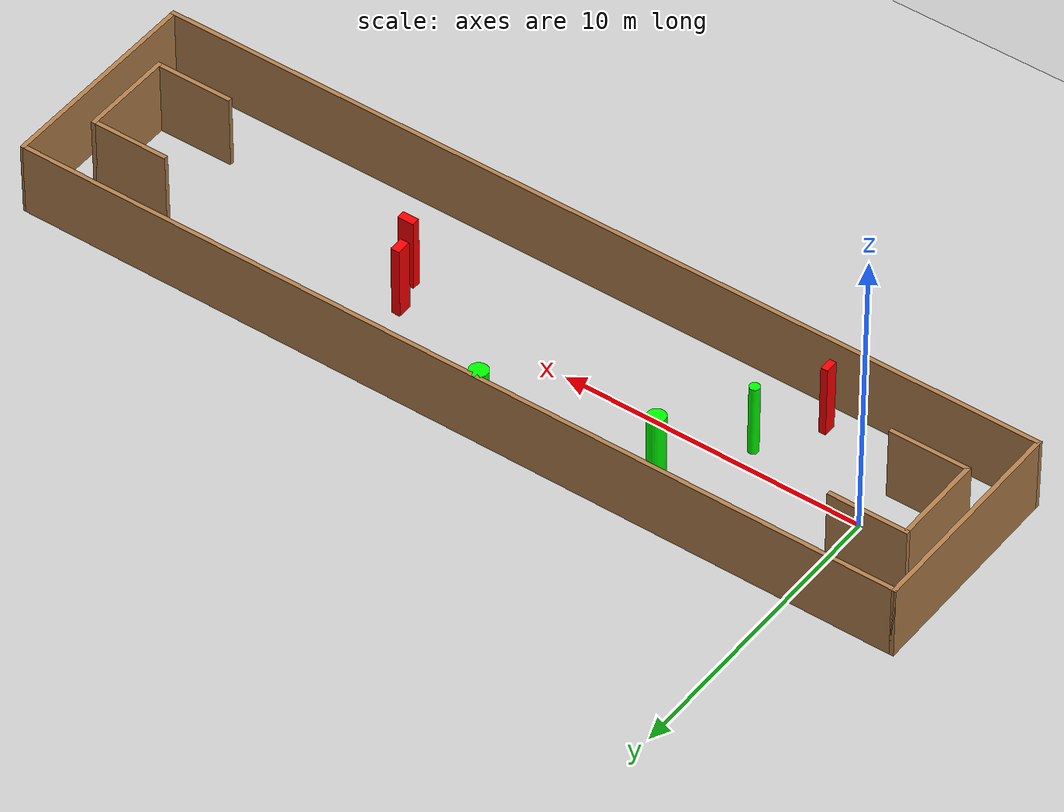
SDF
<sdf version="1.7">
 <world name="default">
  <light name="sun" type="directional">
   <pose>0 0 10 0 -0 0</pose>
   <diffuse>0.8 0.8 0.8 1</diffuse>
   <specular>0.2 0.2 0.2 1</specular>
   <attenuation>
    <range>1000</range>
    <constant>0.9</constant>
    <linear>0.01</linear>
    <quadratic>0.001</quadratic>
   </attenuation>
   <direction>-0.5 0.1 -0.9</direction>
   <spot><inner_angle>0</inner_angle><outer_angle>0</outer_angle><falloff>0</falloff></spot>
  </light>
  <model name="ground_plane">
   <static>1</static>
   <link name="link">
    <collision name="collision">
     <geometry><plane><normal>0 0 1</normal><size>100 100</size></plane></geometry>
     <surface>
      <contact><collide_bitmask>65535</collide_bitmask></contact>
      <friction><ode><mu>100</mu><mu2>50</mu2></ode></friction>
     </surface>
    </collision>
    <visual name="visual">
     <cast_shadows>0</cast_shadows>
     <geometry><plane><normal>0 0 1</normal><size>100 100</size></plane></geometry>
     <material>
      <script><uri>file://media/materials/scripts/gazebo.material</uri><name>Gazebo/Grey</name></script>
     </material>
    </visual>
   </link>
  </model>
  <gravity>0 0 -9.8</gravity>
  <magnetic_field>6e-06 2.3e-05 -4.2e-05</magnetic_field>
  <atmosphere type="adiabatic"/>
  <physics type="ode">
   <max_step_size>0.001</max_step_size>
   <real_time_factor>1</real_time_factor>
   <real_time_update_rate>1000</real_time_update_rate>
  </physics>
  <scene><ambient>0.4 0.4 0.4 1</ambient><background>0.7 0.7 0.7 1</background><shadows>1</shadows></scene>
  <spherical_coordinates>
   <surface_model>EARTH_WGS84</surface_model>
   <latitude_deg>0</latitude_deg>
   <longitude_deg>0</longitude_deg>
   <elevation>0</elevation>
   <heading_deg>0</heading_deg>
  </spherical_coordinates>
  <model name="my_base_walls">
   <link name="Wall_0">
    <collision name="Wall_0_Collision">
     <geometry><box><size>7.15 0.15 2.5</size></box></geometry>
     <pose>0 0 1.25 0 -0 0</pose>
    </collision>
    <visual name="Wall_0_Visual">
     <pose>0 0 1.25 0 -0 0</pose>
     <geometry><box><size>7.15 0.15 2.5</size></box></geometry>
     <material>
      <script><uri>file://media/materials/scripts/gazebo.material</uri><name>Gazebo/Wood</name></script>
      <ambient>1 1 1 1</ambient>
     </material>
     <meta><layer>0</layer></meta>
    </visual>
    <pose>-15 0 0 0 -0 1.5708</pose>
   </link>
   <link name="Wall_10">
    <collision name="Wall_10_Collision">
     <geometry><box><size>2.65 0.15 2.5</size></box></geometry>
     <pose>0 0 1.25 0 -0 0</pose>
    </collision>
    <visual name="Wall_10_Visual">
     <pose>0 0 1.25 0 -0 0</pose>
     <geometry><box><size>2.65 0.15 2.5</size></box></geometry>
     <material>
      <script><uri>file://media/materials/scripts/gazebo.material</uri><name>Gazebo/Wood</name></script>
      <ambient>1 1 1 1</ambient>
     </material>
     <meta><layer>0</layer></meta>
    </visual>
    <pose>-12.75 -1.5 0 0 -0 0</pose>
   </link>
   <link name="Wall_12">
    <collision name="Wall_12_Collision">
     <geometry><box><size>2.65 0.15 2.5</size></box></geometry>
     <pose>0 0 1.25 0 -0 0</pose>
    </collision>
    <visual name="Wall_12_Visual">
     <pose>0 0 1.25 0 -0 0</pose>
     <geometry><box><size>2.65 0.15 2.5</size></box></geometry>
     <material>
      <script><uri>file://media/materials/scripts/gazebo.material</uri><name>Gazebo/Wood</name></script>
      <ambient>1 1 1 1</ambient>
     </material>
     <meta><layer>0</layer></meta>
    </visual>
    <pose>-12.75 1.5 0 0 -0 0</pose>
   </link>
   <link name="Wall_14">
    <collision name="Wall_14_Collision">
     <geometry><box><size>3.15 0.15 2.5</size></box></geometry>
     <pose>0 0 1.25 0 -0 0</pose>
    </collision>
    <visual name="Wall_14_Visual">
     <pose>0 0 1.25 0 -0 0</pose>
     <geometry><box><size>3.15 0.15 2.5</size></box></geometry>
     <material>
      <script><uri>file://media/materials/scripts/gazebo.material</uri><name>Gazebo/Wood</name></script>
      <ambient>1 1 1 1</ambient>
     </material>
     <meta><layer>0</layer></meta>
    </visual>
    <pose>14 0 0 0 -0 -1.5708</pose>
   </link>
   <link name="Wall_15">
    <collision name="Wall_15_Collision">
     <geometry><box><size>2.65 0.15 2.5</size></box></geometry>
     <pose>0 0 1.25 0 -0 0</pose>
    </collision>
    <visual name="Wall_15_Visual">
     <pose>0 0 1.25 0 -0 0</pose>
     <geometry><box><size>2.65 0.15 2.5</size></box></geometry>
     <material>
      <script><uri>file://media/materials/scripts/gazebo.material</uri><name>Gazebo/Wood</name></script>
      <ambient>1 1 1 1</ambient>
     </material>
     <meta><layer>0</layer></meta>
    </visual>
    <pose>12.75 -1.5 0 0 -0 3.14159</pose>
   </link>
   <link name="Wall_17">
    <collision name="Wall_17_Collision">
     <geometry><box><size>2.65 0.15 2.5</size></box></geometry>
     <pose>0 0 1.25 0 -0 0</pose>
    </collision>
    <visual name="Wall_17_Visual">
     <pose>0 0 1.25 0 -0 0</pose>
     <geometry><box><size>2.65 0.15 2.5</size></box></geometry>
     <material>
      <script><uri>file://media/materials/scripts/gazebo.material</uri><name>Gazebo/Wood</name></script>
      <ambient>1 1 1 1</ambient>
     </material>
     <meta><layer>0</layer></meta>
    </visual>
    <pose>12.75 1.5 0 0 -0 3.14159</pose>
   </link>
   <link name="Wall_2">
    <collision name="Wall_2_Collision">
     <geometry><box><size>30.15 0.15 2.5</size></box></geometry>
     <pose>0 0 1.25 0 -0 0</pose>
    </collision>
    <visual name="Wall_2_Visual">
     <pose>0 0 1.25 0 -0 0</pose>
     <geometry><box><size>30.15 0.15 2.5</size></box></geometry>
     <material>
      <script><uri>file://media/materials/scripts/gazebo.material</uri><name>Gazebo/Wood</name></script>
      <ambient>1 1 1 1</ambient>
     </material>
     <meta><layer>0</layer></meta>
    </visual>
    <pose>-0 -3.5 0 0 -0 0</pose>
   </link>
   <link name="Wall_4">
    <collision name="Wall_4_Collision">
     <geometry><box><size>30.15 0.15 2.5</size></box></geometry>
     <pose>0 0 1.25 0 -0 0</pose>
    </collision>
    <visual name="Wall_4_Visual">
     <pose>0 0 1.25 0 -0 0</pose>
     <geometry><box><size>30.15 0.15 2.5</size></box></geometry>
     <material>
      <script><uri>file://media/materials/scripts/gazebo.material</uri><name>Gazebo/Wood</name></script>
      <ambient>1 1 1 1</ambient>
     </material>
     <meta><layer>0</layer></meta>
    </visual>
    <pose>-0 3.5 0 0 -0 0</pose>
   </link>
   <link name="Wall_6">
    <collision name="Wall_6_Collision">
     <geometry><box><size>7.15 0.15 2.5</size></box></geometry>
     <pose>0 0 1.25 0 -0 0</pose>
    </collision>
    <visual name="Wall_6_Visual">
     <pose>0 0 1.25 0 -0 0</pose>
     <geometry><box><size>7.15 0.15 2.5</size></box></geometry>
     <material>
      <script><uri>file://media/materials/scripts/gazebo.material</uri><name>Gazebo/Wood</name></script>
      <ambient>1 1 1 1</ambient>
     </material>
     <meta><layer>0</layer></meta>
    </visual>
    <pose>15 0 0 0 -0 -1.5708</pose>
   </link>
   <link name="Wall_9">
    <collision name="Wall_9_Collision">
     <geometry><box><size>3.15 0.15 2.5</size></box></geometry>
     <pose>0 0 1.25 0 -0 0</pose>
    </collision>
    <visual name="Wall_9_Visual">
     <pose>0 0 1.25 0 -0 0</pose>
     <geometry><box><size>3.15 0.15 2.5</size></box></geometry>
     <material>
      <script><uri>file://media/materials/scripts/gazebo.material</uri><name>Gazebo/Wood</name></script>
      <ambient>1 1 1 1</ambient>
     </material>
     <meta><layer>0</layer></meta>
    </visual>
    <pose>-14 0 0 0 -0 -1.5708</pose>
   </link>
   <static>1</static>
   <pose>11.5 0 0 0 -0 0</pose>
  </model>
  <model name="cylinder1">
   <static>1</static>
   <link name="link">
    <inertial>
     <mass>1</mass>
     <inertia><ixx>0.5</ixx><ixy>0</ixy><ixz>0</ixz><iyy>0.5</iyy><iyz>0</iyz><izz>1</izz></inertia>
    </inertial>
    <collision name="collision">
     <geometry><cylinder><radius>0.2916828970190891</radius><length>2.5</length></cylinder></geometry>
    </collision>
    <visual name="visual">
     <geometry><cylinder><radius>0.2916828970190891</radius><length>2.5</length></cylinder></geometry>
     <material>
      <ambient>0 1 0 1</ambient>
      <diffuse>0 1 0 1</diffuse>
      <specular>0.1 0.1 0.1 1</specular>
      <emissive>0 0 0 0</emissive>
     </material>
    </visual>
   </link>
   <pose>5.594112240134292 1.8240644080171142 1.25 0 0 0</pose>
  </model>
  <model name="cylinder2">
   <static>1</static>
   <link name="link">
    <inertial>
     <mass>1</mass>
     <inertia><ixx>0.5</ixx><ixy>0</ixy><ixz>0</ixz><iyy>0.5</iyy><iyz>0</iyz><izz>1</izz></inertia>
    </inertial>
    <collision name="collision">
     <geometry><cylinder><radius>0.30276237788298255</radius><length>2.5</length></cylinder></geometry>
    </collision>
    <visual name="visual">
     <geometry><cylinder><radius>0.30276237788298255</radius><length>2.5</length></cylinder></geometry>
     <material>
      <ambient>0 1 0 1</ambient>
      <diffuse>0 1 0 1</diffuse>
      <specular>0.1 0.1 0.1 1</specular>
      <emissive>0 0 0 0</emissive>
     </material>
    </visual>
   </link>
   <pose>10.633439946507401 3.251361896957981 1.25 0 0 0</pose>
  </model>
  <model name="cylinder3">
   <static>1</static>
   <link name="link">
    <inertial>
     <mass>1</mass>
     <inertia><ixx>0.5</ixx><ixy>0</ixy><ixz>0</ixz><iyy>0.5</iyy><iyz>0</iyz><izz>1</izz></inertia>
    </inertial>
    <collision name="collision">
     <geometry><cylinder><radius>0.168161950983842</radius><length>2.5</length></cylinder></geometry>
    </collision>
    <visual name="visual">
     <geometry><cylinder><radius>0.168161950983842</radius><length>2.5</length></cylinder></geometry>
     <material>
      <ambient>0 1 0 1</ambient>
      <diffuse>0 1 0 1</diffuse>
      <specular>0.1 0.1 0.1 1</specular>
      <emissive>0 0 0 0</emissive>
     </material>
    </visual>
   </link>
   <pose>4.0680825053689205 -0.7113979963357928 1.25 0 0 0</pose>
  </model>
  <model name="box1">
   <static>1</static>
   <link name="link">
    <inertial>
     <mass>1</mass>
     <inertia><ixx>0.083</ixx><ixy>0</ixy><ixz>0</ixz><iyy>0.083</iyy><iyz>0</iyz><izz>0.083</izz></inertia>
    </inertial>
    <collision name="collision">
     <geometry><box><size>0.29442985388163384 0.48398401974893035 2.5</size></box></geometry>
    </collision>
    <visual name="visual">
     <geometry><box><size>0.29442985388163384 0.48398401974893035 2.5</size></box></geometry>
     <material>
      <ambient>1 0 0 1</ambient>
      <diffuse>1 0 0 1</diffuse>
      <specular>0.1 0.1 0.1 1</specular>
      <emissive>0 0 0 0</emissive>
     </material>
    </visual>
    <sensor name="my_contact" type="contact">
     <contact><collision>box_collision</collision><topic>__default_topic__</topic></contact>
    </sensor>
   </link>
   <pose>15.379535401465017 0.5153498113270851 1.25 0 0 0</pose>
  </model>
  <model name="box2">
   <static>1</static>
   <link name="link">
    <inertial>
     <mass>1</mass>
     <inertia><ixx>0.083</ixx><ixy>0</ixy><ixz>0</ixz><iyy>0.083</iyy><iyz>0</iyz><izz>0.083</izz></inertia>
    </inertial>
    <collision name="collision">
     <geometry><box><size>0.5418259757767977 0.28287692671774894 2.5</size></box></geometry>
    </collision>
    <visual name="visual">
     <geometry><box><size>0.5418259757767977 0.28287692671774894 2.5</size></box></geometry>
     <material>
      <ambient>1 0 0 1</ambient>
      <diffuse>1 0 0 1</diffuse>
      <specular>0.1 0.1 0.1 1</specular>
      <emissive>0 0 0 0</emissive>
     </material>
    </visual>
    <sensor name="my_contact" type="contact">
     <contact><collision>box_collision</collision><topic>__default_topic__</topic></contact>
    </sensor>
   </link>
   <pose>15.864247976624338 -0.527528000063664 1.25 0 0 0</pose>
  </model>
  <model name="box3">
   <static>1</static>
   <link name="link">
    <inertial>
     <mass>1</mass>
     <inertia><ixx>0.083</ixx><ixy>0</ixy><ixz>0</ixz><iyy>0.083</iyy><iyz>0</iyz><izz>0.083</izz></inertia>
    </inertial>
    <collision name="collision">
     <geometry><box><size>0.23428041513306233 0.43089482700004356 2.5</size></box></geometry>
    </collision>
    <visual name="visual">
     <geometry><box><size>0.23428041513306233 0.43089482700004356 2.5</size></box></geometry>
     <material>
      <ambient>1 0 0 1</ambient>
      <diffuse>1 0 0 1</diffuse>
      <specular>0.1 0.1 0.1 1</specular>
      <emissive>0 0 0 0</emissive>
     </material>
    </visual>
    <sensor name="my_contact" type="contact">
     <contact><collision>box_collision</collision><topic>__default_topic__</topic></contact>
    </sensor>
   </link>
   <pose>2.8904878142465957 -2.600169750009662 1.25 0 0 0</pose>
  </model>
 </world>
</sdf>
